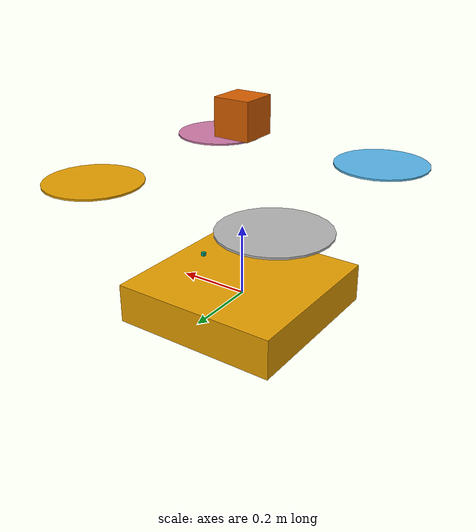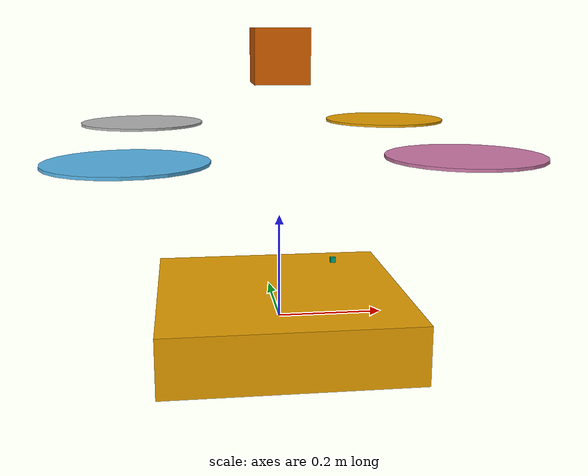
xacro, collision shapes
<?xml version="1.0"?>
  <robot name="if750a_lidar" xmlns:xacro="http://www.ros.org/wiki/xacro">
    <xacro:arg name="debug" default="0" />
    <xacro:arg name="namespace" default="if750a" />
    <!-- Include the if750a_lidar macro file -->
    <xacro:include filename="$(find aero_detector)/urdf/if750a_lidar.xacro" />
    <!-- Create the if750a_lidar -->
    <xacro:if750a_lidar namespace="$(arg namespace)" debug="$(arg debug)" />
  </robot>

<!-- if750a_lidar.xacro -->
<robot xmlns:xacro="http://www.ros.org/wiki/xacro">
  <xacro:property name="mass" value="1.5" />
  <xacro:property name="bag_file" value="/tmp/bag_file.bag" />
  <xacro:property name="visual_mesh_file" value="file://$(find aero_detector)/meshes/if750a.stl" />

  <xacro:macro name="if750a_lidar" params="namespace debug">
    <!-- Base Link definition  -->
    <link name='${namespace}/base_link'>
      <visual>
        <origin xyz="0 0 0" rpy="1.570796 -0 1.570796" />
        <geometry>
          <mesh filename="${visual_mesh_file}" scale="0.001 0.001 0.001" />
        </geometry>
      </visual>

      <collision>
        <origin xyz="0 0 0" rpy="0 0 0" />
        <geometry>
          <box size="0.47 0.47 0.11"/>
        </geometry>
      </collision>

      <inertial>
        <mass value="${mass}" />
        <origin xyz="0 0 0" rpy="0 0 0" />
        <inertia ixx="0.0347563" ixy="0" ixz="0" iyy="0.0458929" iyz="0" izz="0.0977" />
      </inertial>
    </link>

    <gazebo>
      <plugin filename="librotors_gazebo_bag_plugin.so" name="rosbag">
        <robotNamespace>${namespace}</robotNamespace>
        <bagFileName>${bag_file}</bagFileName>
        <linkName>${namespace}/base_link</linkName>
        <frameId>${namespace}/base_link</frameId>
        <rotorVelocitySlowdownSim>10</rotorVelocitySlowdownSim>
      </plugin>
    </gazebo>

    <xacro:include filename="$(find aero_detector)/urdf/if750a_lidar_sensors.xacro" />
    <xacro:include filename="$(find aero_detector)/urdf/if750a_lidar_actuators.xacro" />
  </xacro:macro>
</robot>

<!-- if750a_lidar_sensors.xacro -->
<robot xmlns:xacro="http://www.ros.org/wiki/xacro">
  <!-- Mount a groundtruth sensor -->
  <xacro:macro name="groundtruth_plugin" params="namespace">
    <gazebo>
      <plugin name='${namespace}_groundtruth_plugin' filename='libgazebo_groundtruth_plugin.so'>
        <robotNamespace>${namespace}</robotNamespace>
      </plugin>
    </gazebo>
  </xacro:macro>
  <xacro:groundtruth_plugin namespace="${namespace}"/>

  <!-- Magnetometer -->
  <xacro:macro name="default_magnetometer" params="namespace parent_link *origin">
    <gazebo>
      <plugin name='${namespace}_magnetometer_plugin' filename='libgazebo_magnetometer_plugin.so'>
        <robotNamespace>${namespace}</robotNamespace>
        <pubRate>100</pubRate>
        <noiseDensity>0.0004</noiseDensity>
        <randomWalk>6.4e-06</randomWalk>
        <biasCorrelationTime>600</biasCorrelationTime>
        <magTopic>/mag</magTopic>
      </plugin>
    </gazebo>
  </xacro:macro>
  <xacro:default_magnetometer namespace="${namespace}" parent_link="${namespace}/base_link">
    <origin xyz="0 0 0" rpy="$0 0 0" />
  </xacro:default_magnetometer>

  <!-- Pressure -->
  <xacro:macro name="default_pressure" params="namespace parent_link *origin">
    <gazebo>
      <plugin name='${namespace}_barometer_plugin' filename='libgazebo_barometer_plugin.so'>
        <robotNamespace>${namespace}</robotNamespace>
        <pubRate>50</pubRate>
        <baroTopic>/baro</baroTopic>
      </plugin>
    </gazebo>
  </xacro:macro>
  <xacro:default_pressure namespace="${namespace}" parent_link="${namespace}/base_link">
    <origin xyz="0 0 0" rpy="$0 0 0" />
  </xacro:default_pressure>

  <!-- IMU  -->
  <xacro:macro name="default_imu_enu" params="namespace parent_link *origin">
    <!-- IMU link definition -->
    <joint name="imu_joint" type="fixed">
      <origin xyz="0 0 0" rpy="0 0 0" />
      <parent link="${parent_link}" />
      <child link="${namespace}/imu_link" />
    </joint>
    <link name='${namespace}/imu_link'>
      <inertial>
        <mass value="0.015" />
        <origin xyz="0 0 0" rpy="0 0 0" />
        <inertia ixx="0.00001" ixy="0" ixz="0" iyy="0.00001" iyz="0" izz="0.00001" />
      </inertial>
    </link>
    <gazebo>
      <plugin name='${namespace}_gazebo_imu_plugin' filename='libgazebo_imu_plugin.so'>
        <robotNamespace>${namespace}</robotNamespace>
        <linkName>${namespace}/imu_link</linkName>
        <imuTopic>${namespace}/imu</imuTopic>
        <gyroscopeNoiseDensity>0.0003394</gyroscopeNoiseDensity>
        <gyroscopeRandomWalk>3.8785e-05</gyroscopeRandomWalk>
        <gyroscopeBiasCorrelationTime>1000.0</gyroscopeBiasCorrelationTime>
        <gyroscopeTurnOnBiasSigma>0.0087</gyroscopeTurnOnBiasSigma>
        <accelerometerNoiseDensity>0.004</accelerometerNoiseDensity>
        <accelerometerRandomWalk>0.006</accelerometerRandomWalk>
        <accelerometerBiasCorrelationTime>300.0</accelerometerBiasCorrelationTime>
        <accelerometerTurnOnBiasSigma>0.196</accelerometerTurnOnBiasSigma>
      </plugin>
    </gazebo>
  </xacro:macro>
  <xacro:default_imu_enu namespace="${namespace}" parent_link="${namespace}/base_link">
    <origin xyz="-0.055 -0.08 0" rpy="0 0 0" />
  </xacro:default_imu_enu>

  <!-- MAVLINK interface-->
  <xacro:macro name="default_mavlink_interface" params="namespace">
    <gazebo>
      <plugin name='${namespace}_mavlink_interface' filename='libgazebo_mavlink_interface.so'>
        <robotNamespace />
        <imuSubTopic>/imu</imuSubTopic>
        <magSubTopic>/mag</magSubTopic>
        <baroSubTopic>/baro</baroSubTopic>
        <mavlink_addr>INADDR_ANY</mavlink_addr>
        <mavlink_udp_port>14560</mavlink_udp_port>
        <mavlink_tcp_port>4560</mavlink_tcp_port>
        <serialEnabled>false</serialEnabled>
        <serialDevice>/dev/ttyACM0</serialDevice>
        <baudRate>921600</baudRate>
        <qgc_addr>INADDR_ANY</qgc_addr>
        <qgc_udp_port>14550</qgc_udp_port>
        <hil_mode>false</hil_mode>
        <hil_state_level>false</hil_state_level>
        <enable_lockstep>true</enable_lockstep>
        <use_tcp>true</use_tcp>
        <send_vision_estimation>true</send_vision_estimation>
        <send_odometry>false</send_odometry>
        <motorSpeedCommandPubTopic>/gazebo/command/motor_speed</motorSpeedCommandPubTopic>
        <control_channels>
          <channel name='rotor1'>
            <input_index>0</input_index>
            <input_offset>0</input_offset>
            <input_scaling>1000</input_scaling>
            <zero_position_disarmed>0</zero_position_disarmed>
            <zero_position_armed>100</zero_position_armed>
            <joint_control_type>velocity</joint_control_type>
          </channel>
          <channel name='rotor2'>
            <input_index>1</input_index>
            <input_offset>0</input_offset>
            <input_scaling>1000</input_scaling>
            <zero_position_disarmed>0</zero_position_disarmed>
            <zero_position_armed>100</zero_position_armed>
            <joint_control_type>velocity</joint_control_type>
          </channel>
          <channel name='rotor3'>
            <input_index>2</input_index>
            <input_offset>0</input_offset>
            <input_scaling>1000</input_scaling>
            <zero_position_disarmed>0</zero_position_disarmed>
            <zero_position_armed>100</zero_position_armed>
            <joint_control_type>velocity</joint_control_type>
          </channel>
          <channel name='rotor4'>
            <input_index>3</input_index>
            <input_offset>0</input_offset>
            <input_scaling>1000</input_scaling>
            <zero_position_disarmed>0</zero_position_disarmed>
            <zero_position_armed>100</zero_position_armed>
            <joint_control_type>velocity</joint_control_type>
          </channel>
          <channel name='aux1'>
            <input_index>4</input_index>
            <input_offset>0</input_offset>
            <input_scaling>1000</input_scaling>
            <zero_position_disarmed>0</zero_position_disarmed>
            <zero_position_armed>100</zero_position_armed>
            <joint_control_type>velocity</joint_control_type>
          </channel>
        </control_channels>
      </plugin>
    </gazebo>
  </xacro:macro>
  <xacro:default_mavlink_interface namespace="${namespace}"></xacro:default_mavlink_interface>

  <!-- Mount a camera # 1-->
  <xacro:macro name="camera_macro" params="namespace parent_link camera_suffix frame_rate
    horizontal_fov image_width image_height image_format min_distance
    max_distance noise_mean noise_stddev  *origin">
    <link name="${namespace}/camera_${camera_suffix}_link">
      <collision>
        <origin xyz="0 0 0" rpy="0 0 0" />
        <geometry>
          <box size="0.01 0.01 0.01"/>
        </geometry>
      </collision>
      <inertial>
        <mass value="1e-5" />
        <origin xyz="0 0 0" rpy="0 0 0" />
        <inertia ixx="1e-6" ixy="0" ixz="0" iyy="1e-6" iyz="0" izz="1e-6" />
      </inertial>
    </link>
    <joint name="${namespace}/camera_${camera_suffix}_joint" type="fixed">
      <xacro:insert_block name="origin" />
      <parent link="${parent_link}" />
      <child link="${namespace}/camera_${camera_suffix}_link" />
    </joint>
    <link name="${namespace}/camera_${camera_suffix}_optical_link" />
    <joint name="${namespace}/camera_${camera_suffix}_optical_joint" type="fixed">
      <origin xyz="0 0 0" rpy="${-pi/2} 0 ${-pi/2}" />
      <parent link="${namespace}/camera_${camera_suffix}_link" />
      <child link="${namespace}/camera_${camera_suffix}_optical_link" />
    </joint>
    <gazebo reference="${namespace}/camera_${camera_suffix}_link">
      <sensor type="camera" name="${namespace}_camera_${camera_suffix}">
        <update_rate>${frame_rate}</update_rate>
        <camera name="head">
          <horizontal_fov>${horizontal_fov}</horizontal_fov>
          <image>
            <width>${image_width}</width>
            <height>${image_height}</height>
            <format>${image_format}</format>
          </image>
          <clip>
            <near>${min_distance}</near>
            <far>${max_distance}</far>
          </clip>
          <noise>
            <type>gaussian</type>
            <mean>${noise_mean}</mean>
            <stddev>${noise_stddev}</stddev>
          </noise>
        </camera>
        <plugin name="${namespace}_camera_${camera_suffix}_controller" filename="libgazebo_ros_camera.so">
          <robotNamespace>${namespace}</robotNamespace>
          <alwaysOn>true</alwaysOn>
          <updateRate>${frame_rate}</updateRate>
          <cameraName>camera_${camera_suffix}</cameraName>
          <imageTopicName>image_raw</imageTopicName>
          <cameraInfoTopicName>camera_info</cameraInfoTopicName>
          <frameName>camera_${camera_suffix}_link</frameName>
          <hackBaseline>0.07</hackBaseline>
          <distortionK1>0.0</distortionK1>
          <distortionK2>0.0</distortionK2>
          <distortionK3>0.0</distortionK3>
          <distortionT1>0.0</distortionT1>
          <distortionT2>0.0</distortionT2>
        </plugin>
      </sensor>
    </gazebo>
  </xacro:macro>
  <xacro:camera_macro namespace="${namespace}" parent_link="${namespace}/base_link" camera_suffix="1" frame_rate="10" horizontal_fov="2.0" image_width="1280" image_height="720" image_format="R8G8B8" min_distance="0.02" max_distance="300" noise_mean="0.0" noise_stddev="0.007">
    <origin xyz="0.11 0.03 0.10" rpy="0 0 0" />
  </xacro:camera_macro>

  <!-- Mount a GPS.-->
  <xacro:macro name="gps_plugin_macro" params="namespace gps_suffix parent_link gps_topic ground_speed_topic
      mass_gps_sensor horizontal_pos_std_dev vertical_pos_std_dev
      horizontal_vel_std_dev vertical_vel_std_dev *inertia *origin">
    <!-- GPS link -->
    <link name="${namespace}/gps${gps_suffix}_link">
      <inertial>
        <xacro:insert_block name="inertia" />
        <mass value="${mass_gps_sensor}" /> <!-- [kg] -->
        <origin xyz="0 0 0" rpy="0 0 0" />
      </inertial>
    </link>
    <!-- GPS joint -->
    <joint name="${namespace}/gps${gps_suffix}_joint" type="revolute">
      <xacro:insert_block name="origin" />
      <parent link="${parent_link}" />
      <child link="${namespace}/gps${gps_suffix}_link" />
      <limit upper="0" lower="0" effort="0" velocity="0" />
    </joint>
    <gazebo reference="${namespace}/gps${gps_suffix}_link">
      <sensor type="gps" name="${namespace}_gps${gps_suffix}">
        <pose>0 0 0 0 0 0</pose>
        <visualize>0</visualize>
        <always_on>1</always_on>
        <update_rate>5</update_rate>
        <gps>
          <position_sensing>
            <horizontal>
              <noise type="gaussian">
                <mean>0.0</mean>
                <stddev>${horizontal_pos_std_dev}</stddev>
                <bias_mean>0.0</bias_mean>
                <bias_stddev>0.0</bias_stddev>
              </noise>
            </horizontal>
            <vertical>
              <noise type="gaussian">
                <mean>0.0</mean>
                <stddev>${vertical_pos_std_dev}</stddev>
                <bias_mean>0.0</bias_mean>
                <bias_stddev>0.0</bias_stddev>
              </noise>
            </vertical>
          </position_sensing>
          <velocity_sensing>
            <horizontal>
              <noise type="gaussian">
                <mean>0.0</mean>
                <stddev>${horizontal_vel_std_dev}</stddev>
                <bias_mean>0.0</bias_mean>
                <bias_stddev>0.0</bias_stddev>
              </noise>
            </horizontal>
            <vertical>
              <noise type="gaussian">
                <mean>0.0</mean>
                <stddev>${vertical_vel_std_dev}</stddev>
                <bias_mean>0.0</bias_mean>
                <bias_stddev>0.0</bias_stddev>
              </noise>
            </vertical>
          </velocity_sensing>
        </gps>
        <plugin filename="librotors_gazebo_gps_plugin.so" name="rotors_gazebo_gps${gps_suffix}_plugin">
          <robotNamespace>${namespace}</robotNamespace> <!-- (string, required): ros namespace in which the messages are published -->
          <linkName>${namespace}/gps${gps_suffix}_link</linkName> <!-- (string, required): name of the body which holds the GPS sensor -->
          <gpsTopic>${gps_topic}</gpsTopic> <!-- (string): name of the sensor output topic and prefix of service names (defaults to 'gps') -->
          <groundSpeedTopic>${ground_speed_topic}</groundSpeedTopic> <!-- (string): name of the ground speed output topic (defaults to 'ground_speed') -->
          <horPosStdDev>${horizontal_pos_std_dev}</horPosStdDev> <!-- standard deviation for horizontal position noise [m] -->
          <verPosStdDev>${vertical_pos_std_dev}</verPosStdDev> <!-- standard deviation for vertical position noise [m] -->
          <horVelStdDev>${horizontal_vel_std_dev}</horVelStdDev> <!-- standard deviation for horizontal speed noise [m/s] -->
          <verVelStdDev>${vertical_vel_std_dev}</verVelStdDev> <!-- standard deviation for vertical speed noise [m/s] -->
        </plugin>
      </sensor>
    </gazebo>
  </xacro:macro>

  <xacro:macro name="default_gps" params="namespace parent_link gps_suffix">
    <!-- Default GPS configuration -->
    <xacro:gps_plugin_macro namespace="${namespace}" gps_suffix="${gps_suffix}" parent_link="${parent_link}" gps_topic="gps" ground_speed_topic="ground_speed" mass_gps_sensor="0.001" horizontal_pos_std_dev="0.0" vertical_pos_std_dev="0.0" horizontal_vel_std_dev="0.0" vertical_vel_std_dev="0.0">
      <inertia ixx="0.00001" ixy="0.0" ixz="0.0" iyy="0.00001" iyz="0.0" izz="0.00001" />
      <origin xyz="0 0 0" rpy="0 0 0" />
    </xacro:gps_plugin_macro>
  </xacro:macro>

  <xacro:default_gps namespace="${namespace}" parent_link="${namespace}/base_link" gps_suffix="0" />

  <!-- Laser -->
  <xacro:macro name="laser_macro" params="namespace parent_link">
    <joint name="${namespace}/rplidar_joint" type="revolute">
      <origin xyz="0 0 0" rpy="0 0 -1.57" />
      <child link="${namespace}/rplidar_link"/>
      <parent link="${parent_link}"/>
      <limit upper="0" lower="0" effort="0" velocity="0" />
    </joint>

    <link name="${namespace}/rplidar_link">
      <collision>
        <origin xyz="0 0 0.5" rpy="0 0 0" />
        <geometry>
          <box size="0.1 0.1 0.1" />
        </geometry>
      </collision>

      <inertial>
        <mass value="0.19" />
        <origin xyz="0 0 0" rpy="0 0 0" />
        <inertia ixx="4.15e-6" ixy="0" ixz="0" iyy="2.407e-6" iyz="0" izz="2.407e-6" />
      </inertial>
    </link>
    <gazebo>
      <sensor type="ray" name="${namespace}_laser">
        <pose>0 0 0 0 0 0</pose>
        <visualize>false</visualize>
        <update_rate>5.5</update_rate>
        <ray>
          <scan>
            <horizontal>
              <samples>3000</samples>
              <resolution>1</resolution>
              <min_angle>0</min_angle>
              <max_angle>6.28</max_angle>
            </horizontal>
          </scan>
          <range>
            <min>0.05</min>
            <max>30</max>
            <resolution>0.05</resolution>
          </range>
          <noise>
            <type>gaussian</type>
            <mean>0.0</mean>
            <stddev>0.01</stddev>
          </noise>
        </ray>
        <plugin name="${namespace}_gazebo_ros_head_rplidar_controller" filename="libgazebo_ros_laser.so">
          <updateRate>15.0</updateRate>
          <topicName>${namespace}/laser/scan</topicName>
          <frameName>${namespace}/rplidar_link</frameName>
        </plugin>
      </sensor>
    </gazebo>
  </xacro:macro>
  <xacro:laser_macro namespace="${namespace}" parent_link="${namespace}/base_link"></xacro:laser_macro>

</robot>

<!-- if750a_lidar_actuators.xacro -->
<robot xmlns:xacro="http://www.ros.org/wiki/xacro">

  <xacro:property name="prop_mesh_file" value="file://$(find aero_detector)/meshes/iris_prop_cw.dae" />
  <xacro:property name="prop_mass" value="0.005" />

  <xacro:macro name="default_parachute" params="namespace">
    <gazebo>
      <plugin name='${namespace}_parachute_plugin' filename='libgazebo_parachute_plugin.so'>
        <robotNamespace>${namespace}</robotNamespace>
        <commandSubTopic>/gazebo/command/motor_speed</commandSubTopic>
        <motorNumber>4</motorNumber>
      </plugin>
    </gazebo>
  </xacro:macro>
  <xacro:default_parachute namespace="${namespace}"></xacro:default_parachute>
  />
  <xacro:macro name="thruster_macro" params="namespace thruster_id *origin turningDirection">

    <joint name="${namespace}/rotor_${thruster_id}_joint" type="continuous">
      <xacro:insert_block name="origin" />
      <axis xyz="0 0 1" />
      <parent link="${namespace}/base_link" />
      <child link="${namespace}/rotor_${thruster_id}" />
    </joint>

    <link name='${namespace}/rotor_${thruster_id}'>
      <visual>
        <origin xyz="0 0 0" rpy="0 0 0" />
        <geometry>
          <mesh filename="${prop_mesh_file}" scale="1 1 1" />
        </geometry>
      </visual>

      <collision>
        <origin xyz="0 0 0" rpy="0 0 0" />
        <geometry>
          <cylinder length="0.005" radius="0.128" />
        </geometry>
      </collision>

      <inertial>
        <mass value="${prop_mass}" />
        <xacro:insert_block name="origin" />
        <inertia ixx="9.75e-07" ixy="0" ixz="0" iyy="0.000273104" iyz="0" izz="0.000274004" />
      </inertial>
    </link>

    <gazebo>
      <plugin name='${namespace}_${thruster_id}_model' filename='libgazebo_motor_model.so'>
        <robotNamespace>${namespace}</robotNamespace>
        <jointName>${namespace}/thruster_${thruster_id}_joint</jointName>
        <linkName>${namespace}/thruster_${thruster_id}</linkName>
        <turningDirection>${turningDirection}</turningDirection>
        <timeConstantUp>0.0125</timeConstantUp>
        <timeConstantDown>0.025</timeConstantDown>
        <maxRotVelocity>1100</maxRotVelocity>
        <motorConstant>8.54858e-06</motorConstant>
        <momentConstant>0.06</momentConstant>
        <commandSubTopic>/gazebo/command/motor_speed</commandSubTopic>
        <motorNumber>${thruster_id}</motorNumber>
        <rotorDragCoefficient>0.000806428</rotorDragCoefficient>
        <rollingMomentCoefficient>1e-06</rollingMomentCoefficient>
        <motorSpeedPubTopic>/motor_speed/${thruster_id}</motorSpeedPubTopic>
        <rotorVelocitySlowdownSim>10</rotorVelocitySlowdownSim>
      </plugin>
    </gazebo>

  </xacro:macro>

  <xacro:thruster_macro namespace="${namespace}" thruster_id="0" turningDirection="ccw">
    <origin xyz="0.265 -0.265 0.35" rpy="0 0 0" />
  </xacro:thruster_macro>

  <xacro:thruster_macro namespace="${namespace}" thruster_id="1" turningDirection="ccw">
    <origin xyz="-0.265 0.265 0.35" rpy="0 0 0" />
  </xacro:thruster_macro>

  <xacro:thruster_macro namespace="${namespace}" thruster_id="2" turningDirection="cw">
    <origin xyz="0.265 0.265 0.35" rpy="0 0 0" />
  </xacro:thruster_macro>

  <xacro:thruster_macro namespace="${namespace}" thruster_id="3" turningDirection="cw">
    <origin xyz="-0.265 -0.265 0.35" rpy="0 0 0" />
  </xacro:thruster_macro>

</robot>
